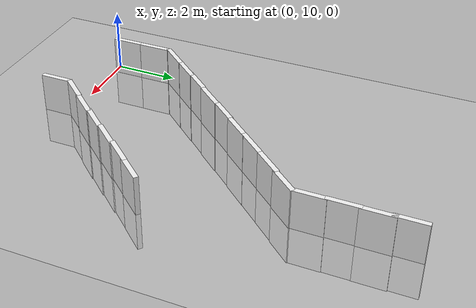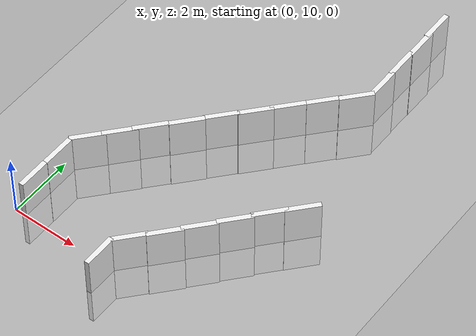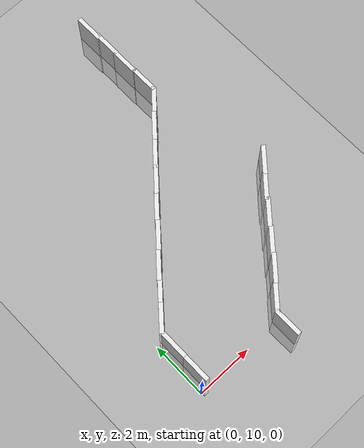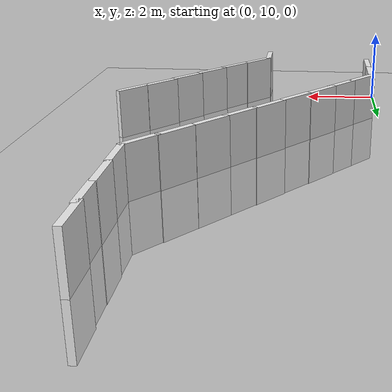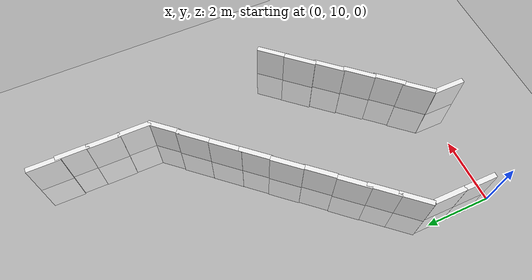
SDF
<sdf version="1.6">
 <world name="default">
  <model name="ground_plane">
   <static>1</static>
   <link name="link">
    <collision name="collision">
     <geometry><plane><normal>0 0 1</normal><size>100 100</size></plane></geometry>
     <surface><friction><ode><mu>100</mu><mu2>50</mu2></ode></friction></surface>
    </collision>
    <visual name="visual">
     <cast_shadows>0</cast_shadows>
     <geometry><plane><normal>0 0 1</normal><size>100 100</size></plane></geometry>
     <material>
      <script><uri>file://media/materials/scripts/gazebo.material</uri><name>Gazebo/Grey</name></script>
     </material>
    </visual>
   </link>
  </model>
  <model name="wall_left_07_clone_3_clone_1">
   <link name="Wall_10">
    <inertial>
     <mass>1</mass>
     <inertia><ixx>1</ixx><ixy>0</ixy><ixz>0</ixz><iyy>1</iyy><iyz>0</iyz><izz>1</izz></inertia>
    </inertial>
    <visual name="Wall_10_Visual_0">
     <geometry><box><size>1 0.15 2.5</size></box></geometry>
     <material>
      <script>
       <uri>model://wall/materials/scripts</uri>
       <uri>model://wall/materials/textures</uri>
       <name>wall_white</name>
      </script>
      <shader type="pixel"><normal_map>__default__</normal_map></shader>
      <ambient>1 1 1 1</ambient>
      <diffuse>1 1 1 1</diffuse>
      <specular>0 0 0 1</specular>
      <emissive>0 0 0 1</emissive>
     </material>
     <meta><layer>0</layer></meta>
    </visual>
    <collision name="Wall_10_Collision_0">
     <geometry><box><size>1 0.15 2.5</size></box></geometry>
     <surface>
      <friction>
       <ode><mu>1</mu><mu2>1</mu2><fdir1>0 0 0</fdir1><slip1>0</slip1><slip2>0</slip2></ode>
       <torsional>
        <coefficient>1</coefficient>
        <patch_radius>0</patch_radius>
        <surface_radius>0</surface_radius>
        <use_patch_radius>1</use_patch_radius>
        <ode><slip>0</slip></ode>
       </torsional>
      </friction>
      <bounce><restitution_coefficient>0</restitution_coefficient><threshold>1e+06</threshold></bounce>
      <contact>
       <collide_without_contact>0</collide_without_contact>
       <collide_without_contact_bitmask>1</collide_without_contact_bitmask>
       <collide_bitmask>1</collide_bitmask>
       <ode>
        <soft_cfm>0</soft_cfm>
        <soft_erp>0.2</soft_erp>
        <kp>1e+13</kp>
        <kd>1</kd>
        <max_vel>0.01</max_vel>
        <min_depth>0</min_depth>
       </ode>
       <bullet>
        <split_impulse>1</split_impulse>
        <split_impulse_penetration_threshold>-0.01</split_impulse_penetration_threshold>
        <soft_cfm>0</soft_cfm>
        <soft_erp>0.2</soft_erp>
        <kp>1e+13</kp>
        <kd>1</kd>
       </bullet>
      </contact>
     </surface>
    </collision>
   </link>
   <static>1</static>
   <pose>3.2753 9.59984 0 0 -0 1.57</pose>
  </model>
  <model name="wall_left_07_clone_3_clone_3_clone">
   <link name="Wall_10">
    <inertial>
     <mass>1</mass>
     <inertia><ixx>1</ixx><ixy>0</ixy><ixz>0</ixz><iyy>1</iyy><iyz>0</iyz><izz>1</izz></inertia>
    </inertial>
    <visual name="Wall_10_Visual_0">
     <geometry><box><size>1 0.15 2.5</size></box></geometry>
     <material>
      <script>
       <uri>model://wall/materials/scripts</uri>
       <uri>model://wall/materials/textures</uri>
       <name>wall_white</name>
      </script>
      <shader type="pixel"><normal_map>__default__</normal_map></shader>
      <ambient>1 1 1 1</ambient>
      <diffuse>1 1 1 1</diffuse>
      <specular>0 0 0 1</specular>
      <emissive>0 0 0 1</emissive>
     </material>
     <meta><layer>0</layer></meta>
    </visual>
    <collision name="Wall_10_Collision_0">
     <geometry><box><size>1 0.15 2.5</size></box></geometry>
     <surface>
      <friction>
       <ode><mu>1</mu><mu2>1</mu2><fdir1>0 0 0</fdir1><slip1>0</slip1><slip2>0</slip2></ode>
       <torsional>
        <coefficient>1</coefficient>
        <patch_radius>0</patch_radius>
        <surface_radius>0</surface_radius>
        <use_patch_radius>1</use_patch_radius>
        <ode><slip>0</slip></ode>
       </torsional>
      </friction>
      <bounce><restitution_coefficient>0</restitution_coefficient><threshold>1e+06</threshold></bounce>
      <contact>
       <collide_without_contact>0</collide_without_contact>
       <collide_without_contact_bitmask>1</collide_without_contact_bitmask>
       <collide_bitmask>1</collide_bitmask>
       <ode>
        <soft_cfm>0</soft_cfm>
        <soft_erp>0.2</soft_erp>
        <kp>1e+13</kp>
        <kd>1</kd>
        <max_vel>0.01</max_vel>
        <min_depth>0</min_depth>
       </ode>
       <bullet>
        <split_impulse>1</split_impulse>
        <split_impulse_penetration_threshold>-0.01</split_impulse_penetration_threshold>
        <soft_cfm>0</soft_cfm>
        <soft_erp>0.2</soft_erp>
        <kp>1e+13</kp>
        <kd>1</kd>
       </bullet>
      </contact>
     </surface>
    </collision>
   </link>
   <static>1</static>
   <pose>3.5922 10.4182 0 0 -0 0.850469</pose>
  </model>
  <model name="wall_left_07_clone_3_clone_3_clone_clone">
   <link name="Wall_10">
    <inertial>
     <mass>1</mass>
     <inertia><ixx>1</ixx><ixy>0</ixy><ixz>0</ixz><iyy>1</iyy><iyz>0</iyz><izz>1</izz></inertia>
    </inertial>
    <visual name="Wall_10_Visual_0">
     <geometry><box><size>1 0.15 2.5</size></box></geometry>
     <material>
      <script>
       <uri>model://wall/materials/scripts</uri>
       <uri>model://wall/materials/textures</uri>
       <name>wall_white</name>
      </script>
      <shader type="pixel"><normal_map>__default__</normal_map></shader>
      <ambient>1 1 1 1</ambient>
      <diffuse>1 1 1 1</diffuse>
      <specular>0 0 0 1</specular>
      <emissive>0 0 0 1</emissive>
     </material>
     <meta><layer>0</layer></meta>
    </visual>
    <collision name="Wall_10_Collision_0">
     <geometry><box><size>1 0.15 2.5</size></box></geometry>
     <surface>
      <friction>
       <ode><mu>1</mu><mu2>1</mu2><fdir1>0 0 0</fdir1><slip1>0</slip1><slip2>0</slip2></ode>
       <torsional>
        <coefficient>1</coefficient>
        <patch_radius>0</patch_radius>
        <surface_radius>0</surface_radius>
        <use_patch_radius>1</use_patch_radius>
        <ode><slip>0</slip></ode>
       </torsional>
      </friction>
      <bounce><restitution_coefficient>0</restitution_coefficient><threshold>1e+06</threshold></bounce>
      <contact>
       <collide_without_contact>0</collide_without_contact>
       <collide_without_contact_bitmask>1</collide_without_contact_bitmask>
       <collide_bitmask>1</collide_bitmask>
       <ode>
        <soft_cfm>0</soft_cfm>
        <soft_erp>0.2</soft_erp>
        <kp>1e+13</kp>
        <kd>1</kd>
        <max_vel>0.01</max_vel>
        <min_depth>0</min_depth>
       </ode>
       <bullet>
        <split_impulse>1</split_impulse>
        <split_impulse_penetration_threshold>-0.01</split_impulse_penetration_threshold>
        <soft_cfm>0</soft_cfm>
        <soft_erp>0.2</soft_erp>
        <kp>1e+13</kp>
        <kd>1</kd>
       </bullet>
      </contact>
     </surface>
    </collision>
   </link>
   <static>1</static>
   <pose>4.22125 11.1059 0 0 -0 0.850469</pose>
  </model>
  <model name="wall_left_07_clone_3_clone_3_clone_clone_0">
   <link name="Wall_10">
    <inertial>
     <mass>1</mass>
     <inertia><ixx>1</ixx><ixy>0</ixy><ixz>0</ixz><iyy>1</iyy><iyz>0</iyz><izz>1</izz></inertia>
    </inertial>
    <visual name="Wall_10_Visual_0">
     <geometry><box><size>1 0.15 2.5</size></box></geometry>
     <material>
      <script>
       <uri>model://wall/materials/scripts</uri>
       <uri>model://wall/materials/textures</uri>
       <name>wall_white</name>
      </script>
      <shader type="pixel"><normal_map>__default__</normal_map></shader>
      <ambient>1 1 1 1</ambient>
      <diffuse>1 1 1 1</diffuse>
      <specular>0 0 0 1</specular>
      <emissive>0 0 0 1</emissive>
     </material>
     <meta><layer>0</layer></meta>
    </visual>
    <collision name="Wall_10_Collision_0">
     <geometry><box><size>1 0.15 2.5</size></box></geometry>
     <surface>
      <friction>
       <ode><mu>1</mu><mu2>1</mu2><fdir1>0 0 0</fdir1><slip1>0</slip1><slip2>0</slip2></ode>
       <torsional>
        <coefficient>1</coefficient>
        <patch_radius>0</patch_radius>
        <surface_radius>0</surface_radius>
        <use_patch_radius>1</use_patch_radius>
        <ode><slip>0</slip></ode>
       </torsional>
      </friction>
      <bounce><restitution_coefficient>0</restitution_coefficient><threshold>1e+06</threshold></bounce>
      <contact>
       <collide_without_contact>0</collide_without_contact>
       <collide_without_contact_bitmask>1</collide_without_contact_bitmask>
       <collide_bitmask>1</collide_bitmask>
       <ode>
        <soft_cfm>0</soft_cfm>
        <soft_erp>0.2</soft_erp>
        <kp>1e+13</kp>
        <kd>1</kd>
        <max_vel>0.01</max_vel>
        <min_depth>0</min_depth>
       </ode>
       <bullet>
        <split_impulse>1</split_impulse>
        <split_impulse_penetration_threshold>-0.01</split_impulse_penetration_threshold>
        <soft_cfm>0</soft_cfm>
        <soft_erp>0.2</soft_erp>
        <kp>1e+13</kp>
        <kd>1</kd>
       </bullet>
      </contact>
     </surface>
    </collision>
   </link>
   <static>1</static>
   <pose>4.80636 11.812 0 0 -0 0.850469</pose>
  </model>
  <model name="wall_left_07_clone_3_clone_3_clone_clone_1">
   <link name="Wall_10">
    <inertial>
     <mass>1</mass>
     <inertia><ixx>1</ixx><ixy>0</ixy><ixz>0</ixz><iyy>1</iyy><iyz>0</iyz><izz>1</izz></inertia>
    </inertial>
    <visual name="Wall_10_Visual_0">
     <geometry><box><size>1 0.15 2.5</size></box></geometry>
     <material>
      <script>
       <uri>model://wall/materials/scripts</uri>
       <uri>model://wall/materials/textures</uri>
       <name>wall_white</name>
      </script>
      <shader type="pixel"><normal_map>__default__</normal_map></shader>
      <ambient>1 1 1 1</ambient>
      <diffuse>1 1 1 1</diffuse>
      <specular>0 0 0 1</specular>
      <emissive>0 0 0 1</emissive>
     </material>
     <meta><layer>0</layer></meta>
    </visual>
    <collision name="Wall_10_Collision_0">
     <geometry><box><size>1 0.15 2.5</size></box></geometry>
     <surface>
      <friction>
       <ode><mu>1</mu><mu2>1</mu2><fdir1>0 0 0</fdir1><slip1>0</slip1><slip2>0</slip2></ode>
       <torsional>
        <coefficient>1</coefficient>
        <patch_radius>0</patch_radius>
        <surface_radius>0</surface_radius>
        <use_patch_radius>1</use_patch_radius>
        <ode><slip>0</slip></ode>
       </torsional>
      </friction>
      <bounce><restitution_coefficient>0</restitution_coefficient><threshold>1e+06</threshold></bounce>
      <contact>
       <collide_without_contact>0</collide_without_contact>
       <collide_without_contact_bitmask>1</collide_without_contact_bitmask>
       <collide_bitmask>1</collide_bitmask>
       <ode>
        <soft_cfm>0</soft_cfm>
        <soft_erp>0.2</soft_erp>
        <kp>1e+13</kp>
        <kd>1</kd>
        <max_vel>0.01</max_vel>
        <min_depth>0</min_depth>
       </ode>
       <bullet>
        <split_impulse>1</split_impulse>
        <split_impulse_penetration_threshold>-0.01</split_impulse_penetration_threshold>
        <soft_cfm>0</soft_cfm>
        <soft_erp>0.2</soft_erp>
        <kp>1e+13</kp>
        <kd>1</kd>
       </bullet>
      </contact>
     </surface>
    </collision>
   </link>
   <static>1</static>
   <pose>5.40462 12.5407 0 0 -0 0.850469</pose>
  </model>
  <model name="wall_left_07_clone_3_clone_3_clone_clone_2">
   <link name="Wall_10">
    <inertial>
     <mass>1</mass>
     <inertia><ixx>1</ixx><ixy>0</ixy><ixz>0</ixz><iyy>1</iyy><iyz>0</iyz><izz>1</izz></inertia>
    </inertial>
    <visual name="Wall_10_Visual_0">
     <geometry><box><size>1 0.15 2.5</size></box></geometry>
     <material>
      <script>
       <uri>model://wall/materials/scripts</uri>
       <uri>model://wall/materials/textures</uri>
       <name>wall_white</name>
      </script>
      <shader type="pixel"><normal_map>__default__</normal_map></shader>
      <ambient>1 1 1 1</ambient>
      <diffuse>1 1 1 1</diffuse>
      <specular>0 0 0 1</specular>
      <emissive>0 0 0 1</emissive>
     </material>
     <meta><layer>0</layer></meta>
    </visual>
    <collision name="Wall_10_Collision_0">
     <geometry><box><size>1 0.15 2.5</size></box></geometry>
     <surface>
      <friction>
       <ode><mu>1</mu><mu2>1</mu2><fdir1>0 0 0</fdir1><slip1>0</slip1><slip2>0</slip2></ode>
       <torsional>
        <coefficient>1</coefficient>
        <patch_radius>0</patch_radius>
        <surface_radius>0</surface_radius>
        <use_patch_radius>1</use_patch_radius>
        <ode><slip>0</slip></ode>
       </torsional>
      </friction>
      <bounce><restitution_coefficient>0</restitution_coefficient><threshold>1e+06</threshold></bounce>
      <contact>
       <collide_without_contact>0</collide_without_contact>
       <collide_without_contact_bitmask>1</collide_without_contact_bitmask>
       <collide_bitmask>1</collide_bitmask>
       <ode>
        <soft_cfm>0</soft_cfm>
        <soft_erp>0.2</soft_erp>
        <kp>1e+13</kp>
        <kd>1</kd>
        <max_vel>0.01</max_vel>
        <min_depth>0</min_depth>
       </ode>
       <bullet>
        <split_impulse>1</split_impulse>
        <split_impulse_penetration_threshold>-0.01</split_impulse_penetration_threshold>
        <soft_cfm>0</soft_cfm>
        <soft_erp>0.2</soft_erp>
        <kp>1e+13</kp>
        <kd>1</kd>
       </bullet>
      </contact>
     </surface>
    </collision>
   </link>
   <static>1</static>
   <pose>5.9854 13.2576 0 0 -0 0.850469</pose>
  </model>
  <model name="wall_left_07_clone_3_clone_3_clone_clone_3">
   <link name="Wall_10">
    <inertial>
     <mass>1</mass>
     <inertia><ixx>1</ixx><ixy>0</ixy><ixz>0</ixz><iyy>1</iyy><iyz>0</iyz><izz>1</izz></inertia>
    </inertial>
    <visual name="Wall_10_Visual_0">
     <geometry><box><size>1 0.15 2.5</size></box></geometry>
     <material>
      <script>
       <uri>model://wall/materials/scripts</uri>
       <uri>model://wall/materials/textures</uri>
       <name>wall_white</name>
      </script>
      <shader type="pixel"><normal_map>__default__</normal_map></shader>
      <ambient>1 1 1 1</ambient>
      <diffuse>1 1 1 1</diffuse>
      <specular>0 0 0 1</specular>
      <emissive>0 0 0 1</emissive>
     </material>
     <meta><layer>0</layer></meta>
    </visual>
    <collision name="Wall_10_Collision_0">
     <geometry><box><size>1 0.15 2.5</size></box></geometry>
     <surface>
      <friction>
       <ode><mu>1</mu><mu2>1</mu2><fdir1>0 0 0</fdir1><slip1>0</slip1><slip2>0</slip2></ode>
       <torsional>
        <coefficient>1</coefficient>
        <patch_radius>0</patch_radius>
        <surface_radius>0</surface_radius>
        <use_patch_radius>1</use_patch_radius>
        <ode><slip>0</slip></ode>
       </torsional>
      </friction>
      <bounce><restitution_coefficient>0</restitution_coefficient><threshold>1e+06</threshold></bounce>
      <contact>
       <collide_without_contact>0</collide_without_contact>
       <collide_without_contact_bitmask>1</collide_without_contact_bitmask>
       <collide_bitmask>1</collide_bitmask>
       <ode>
        <soft_cfm>0</soft_cfm>
        <soft_erp>0.2</soft_erp>
        <kp>1e+13</kp>
        <kd>1</kd>
        <max_vel>0.01</max_vel>
        <min_depth>0</min_depth>
       </ode>
       <bullet>
        <split_impulse>1</split_impulse>
        <split_impulse_penetration_threshold>-0.01</split_impulse_penetration_threshold>
        <soft_cfm>0</soft_cfm>
        <soft_erp>0.2</soft_erp>
        <kp>1e+13</kp>
        <kd>1</kd>
       </bullet>
      </contact>
     </surface>
    </collision>
   </link>
   <static>1</static>
   <pose>6.56975 13.9124 0 0 -0 0.850469</pose>
  </model>
  <model name="wall_left_07_clone_3_clone_2_clone">
   <link name="Wall_10">
    <inertial>
     <mass>1</mass>
     <inertia><ixx>1</ixx><ixy>0</ixy><ixz>0</ixz><iyy>1</iyy><iyz>0</iyz><izz>1</izz></inertia>
    </inertial>
    <visual name="Wall_10_Visual_0">
     <geometry><box><size>1 0.15 2.5</size></box></geometry>
     <material>
      <script>
       <uri>model://wall/materials/scripts</uri>
       <uri>model://wall/materials/textures</uri>
       <name>wall_white</name>
      </script>
      <shader type="pixel"><normal_map>__default__</normal_map></shader>
      <ambient>1 1 1 1</ambient>
      <diffuse>1 1 1 1</diffuse>
      <specular>0 0 0 1</specular>
      <emissive>0 0 0 1</emissive>
     </material>
     <meta><layer>0</layer></meta>
    </visual>
    <collision name="Wall_10_Collision_0">
     <geometry><box><size>1 0.15 2.5</size></box></geometry>
     <surface>
      <friction>
       <ode><mu>1</mu><mu2>1</mu2><fdir1>0 0 0</fdir1><slip1>0</slip1><slip2>0</slip2></ode>
       <torsional>
        <coefficient>1</coefficient>
        <patch_radius>0</patch_radius>
        <surface_radius>0</surface_radius>
        <use_patch_radius>1</use_patch_radius>
        <ode><slip>0</slip></ode>
       </torsional>
      </friction>
      <bounce><restitution_coefficient>0</restitution_coefficient><threshold>1e+06</threshold></bounce>
      <contact>
       <collide_without_contact>0</collide_without_contact>
       <collide_without_contact_bitmask>1</collide_without_contact_bitmask>
       <collide_bitmask>1</collide_bitmask>
       <ode>
        <soft_cfm>0</soft_cfm>
        <soft_erp>0.2</soft_erp>
        <kp>1e+13</kp>
        <kd>1</kd>
        <max_vel>0.01</max_vel>
        <min_depth>0</min_depth>
       </ode>
       <bullet>
        <split_impulse>1</split_impulse>
        <split_impulse_penetration_threshold>-0.01</split_impulse_penetration_threshold>
        <soft_cfm>0</soft_cfm>
        <soft_erp>0.2</soft_erp>
        <kp>1e+13</kp>
        <kd>1</kd>
       </bullet>
      </contact>
     </surface>
    </collision>
   </link>
   <static>1</static>
   <pose>0.260571 10.5228 0 0 -0 1.57</pose>
  </model>
  <model name="wall_left_07_clone_3_clone_2_clone_clone">
   <link name="Wall_10">
    <inertial>
     <mass>1</mass>
     <inertia><ixx>1</ixx><ixy>0</ixy><ixz>0</ixz><iyy>1</iyy><iyz>0</iyz><izz>1</izz></inertia>
    </inertial>
    <visual name="Wall_10_Visual_0">
     <geometry><box><size>1 0.15 2.5</size></box></geometry>
     <material>
      <script>
       <uri>model://wall/materials/scripts</uri>
       <uri>model://wall/materials/textures</uri>
       <name>wall_white</name>
      </script>
      <shader type="pixel"><normal_map>__default__</normal_map></shader>
      <ambient>1 1 1 1</ambient>
      <diffuse>1 1 1 1</diffuse>
      <specular>0 0 0 1</specular>
      <emissive>0 0 0 1</emissive>
     </material>
     <meta><layer>0</layer></meta>
    </visual>
    <collision name="Wall_10_Collision_0">
     <geometry><box><size>1 0.15 2.5</size></box></geometry>
     <surface>
      <friction>
       <ode><mu>1</mu><mu2>1</mu2><fdir1>0 0 0</fdir1><slip1>0</slip1><slip2>0</slip2></ode>
       <torsional>
        <coefficient>1</coefficient>
        <patch_radius>0</patch_radius>
        <surface_radius>0</surface_radius>
        <use_patch_radius>1</use_patch_radius>
        <ode><slip>0</slip></ode>
       </torsional>
      </friction>
      <bounce><restitution_coefficient>0</restitution_coefficient><threshold>1e+06</threshold></bounce>
      <contact>
       <collide_without_contact>0</collide_without_contact>
       <collide_without_contact_bitmask>1</collide_without_contact_bitmask>
       <collide_bitmask>1</collide_bitmask>
       <ode>
        <soft_cfm>0</soft_cfm>
        <soft_erp>0.2</soft_erp>
        <kp>1e+13</kp>
        <kd>1</kd>
        <max_vel>0.01</max_vel>
        <min_depth>0</min_depth>
       </ode>
       <bullet>
        <split_impulse>1</split_impulse>
        <split_impulse_penetration_threshold>-0.01</split_impulse_penetration_threshold>
        <soft_cfm>0</soft_cfm>
        <soft_erp>0.2</soft_erp>
        <kp>1e+13</kp>
        <kd>1</kd>
       </bullet>
      </contact>
     </surface>
    </collision>
   </link>
   <static>1</static>
   <pose>0.264516 11.4938 0 0 -0 1.57</pose>
  </model>
  <model name="wall_left_07_clone_3_clone_3_clone_clone_4">
   <link name="Wall_10">
    <inertial>
     <mass>1</mass>
     <inertia><ixx>1</ixx><ixy>0</ixy><ixz>0</ixz><iyy>1</iyy><iyz>0</iyz><izz>1</izz></inertia>
    </inertial>
    <visual name="Wall_10_Visual_0">
     <geometry><box><size>1 0.15 2.5</size></box></geometry>
     <material>
      <script>
       <uri>model://wall/materials/scripts</uri>
       <uri>model://wall/materials/textures</uri>
       <name>wall_white</name>
      </script>
      <shader type="pixel"><normal_map>__default__</normal_map></shader>
      <ambient>1 1 1 1</ambient>
      <diffuse>1 1 1 1</diffuse>
      <specular>0 0 0 1</specular>
      <emissive>0 0 0 1</emissive>
     </material>
     <meta><layer>0</layer></meta>
    </visual>
    <collision name="Wall_10_Collision_0">
     <geometry><box><size>1 0.15 2.5</size></box></geometry>
     <surface>
      <friction>
       <ode><mu>1</mu><mu2>1</mu2><fdir1>0 0 0</fdir1><slip1>0</slip1><slip2>0</slip2></ode>
       <torsional>
        <coefficient>1</coefficient>
        <patch_radius>0</patch_radius>
        <surface_radius>0</surface_radius>
        <use_patch_radius>1</use_patch_radius>
        <ode><slip>0</slip></ode>
       </torsional>
      </friction>
      <bounce><restitution_coefficient>0</restitution_coefficient><threshold>1e+06</threshold></bounce>
      <contact>
       <collide_without_contact>0</collide_without_contact>
       <collide_without_contact_bitmask>1</collide_without_contact_bitmask>
       <collide_bitmask>1</collide_bitmask>
       <ode>
        <soft_cfm>0</soft_cfm>
        <soft_erp>0.2</soft_erp>
        <kp>1e+13</kp>
        <kd>1</kd>
        <max_vel>0.01</max_vel>
        <min_depth>0</min_depth>
       </ode>
       <bullet>
        <split_impulse>1</split_impulse>
        <split_impulse_penetration_threshold>-0.01</split_impulse_penetration_threshold>
        <soft_cfm>0</soft_cfm>
        <soft_erp>0.2</soft_erp>
        <kp>1e+13</kp>
        <kd>1</kd>
       </bullet>
      </contact>
     </surface>
    </collision>
   </link>
   <static>1</static>
   <pose>0.553027 12.3794 0 0 -0 0.850469</pose>
  </model>
  <model name="wall_left_07_clone_3_clone_3_clone_clone_5">
   <link name="Wall_10">
    <inertial>
     <mass>1</mass>
     <inertia><ixx>1</ixx><ixy>0</ixy><ixz>0</ixz><iyy>1</iyy><iyz>0</iyz><izz>1</izz></inertia>
    </inertial>
    <visual name="Wall_10_Visual_0">
     <geometry><box><size>1 0.15 2.5</size></box></geometry>
     <material>
      <script>
       <uri>model://wall/materials/scripts</uri>
       <uri>model://wall/materials/textures</uri>
       <name>wall_white</name>
      </script>
      <shader type="pixel"><normal_map>__default__</normal_map></shader>
      <ambient>1 1 1 1</ambient>
      <diffuse>1 1 1 1</diffuse>
      <specular>0 0 0 1</specular>
      <emissive>0 0 0 1</emissive>
     </material>
     <meta><layer>0</layer></meta>
    </visual>
    <collision name="Wall_10_Collision_0">
     <geometry><box><size>1 0.15 2.5</size></box></geometry>
     <surface>
      <friction>
       <ode><mu>1</mu><mu2>1</mu2><fdir1>0 0 0</fdir1><slip1>0</slip1><slip2>0</slip2></ode>
       <torsional>
        <coefficient>1</coefficient>
        <patch_radius>0</patch_radius>
        <surface_radius>0</surface_radius>
        <use_patch_radius>1</use_patch_radius>
        <ode><slip>0</slip></ode>
       </torsional>
      </friction>
      <bounce><restitution_coefficient>0</restitution_coefficient><threshold>1e+06</threshold></bounce>
      <contact>
       <collide_without_contact>0</collide_without_contact>
       <collide_without_contact_bitmask>1</collide_without_contact_bitmask>
       <collide_bitmask>1</collide_bitmask>
       <ode>
        <soft_cfm>0</soft_cfm>
        <soft_erp>0.2</soft_erp>
        <kp>1e+13</kp>
        <kd>1</kd>
        <max_vel>0.01</max_vel>
        <min_depth>0</min_depth>
       </ode>
       <bullet>
        <split_impulse>1</split_impulse>
        <split_impulse_penetration_threshold>-0.01</split_impulse_penetration_threshold>
        <soft_cfm>0</soft_cfm>
        <soft_erp>0.2</soft_erp>
        <kp>1e+13</kp>
        <kd>1</kd>
       </bullet>
      </contact>
     </surface>
    </collision>
   </link>
   <static>1</static>
   <pose>1.13148 13.0444 0 0 -0 0.850469</pose>
  </model>
  <model name="wall_left_07_clone_3_clone_3_clone_clone_6">
   <link name="Wall_10">
    <inertial>
     <mass>1</mass>
     <inertia><ixx>1</ixx><ixy>0</ixy><ixz>0</ixz><iyy>1</iyy><iyz>0</iyz><izz>1</izz></inertia>
    </inertial>
    <visual name="Wall_10_Visual_0">
     <geometry><box><size>1 0.15 2.5</size></box></geometry>
     <material>
      <script>
       <uri>model://wall/materials/scripts</uri>
       <uri>model://wall/materials/textures</uri>
       <name>wall_white</name>
      </script>
      <shader type="pixel"><normal_map>__default__</normal_map></shader>
      <ambient>1 1 1 1</ambient>
      <diffuse>1 1 1 1</diffuse>
      <specular>0 0 0 1</specular>
      <emissive>0 0 0 1</emissive>
     </material>
     <meta><layer>0</layer></meta>
    </visual>
    <collision name="Wall_10_Collision_0">
     <geometry><box><size>1 0.15 2.5</size></box></geometry>
     <surface>
      <friction>
       <ode><mu>1</mu><mu2>1</mu2><fdir1>0 0 0</fdir1><slip1>0</slip1><slip2>0</slip2></ode>
       <torsional>
        <coefficient>1</coefficient>
        <patch_radius>0</patch_radius>
        <surface_radius>0</surface_radius>
        <use_patch_radius>1</use_patch_radius>
        <ode><slip>0</slip></ode>
       </torsional>
      </friction>
      <bounce><restitution_coefficient>0</restitution_coefficient><threshold>1e+06</threshold></bounce>
      <contact>
       <collide_without_contact>0</collide_without_contact>
       <collide_without_contact_bitmask>1</collide_without_contact_bitmask>
       <collide_bitmask>1</collide_bitmask>
       <ode>
        <soft_cfm>0</soft_cfm>
        <soft_erp>0.2</soft_erp>
        <kp>1e+13</kp>
        <kd>1</kd>
        <max_vel>0.01</max_vel>
        <min_depth>0</min_depth>
       </ode>
       <bullet>
        <split_impulse>1</split_impulse>
        <split_impulse_penetration_threshold>-0.01</split_impulse_penetration_threshold>
        <soft_cfm>0</soft_cfm>
        <soft_erp>0.2</soft_erp>
        <kp>1e+13</kp>
        <kd>1</kd>
       </bullet>
      </contact>
     </surface>
    </collision>
   </link>
   <static>1</static>
   <pose>1.66481 13.674 0 0 -0 0.850469</pose>
  </model>
  <model name="wall_left_07_clone_3_clone_3_clone_clone_7">
   <link name="Wall_10">
    <inertial>
     <mass>1</mass>
     <inertia><ixx>1</ixx><ixy>0</ixy><ixz>0</ixz><iyy>1</iyy><iyz>0</iyz><izz>1</izz></inertia>
    </inertial>
    <visual name="Wall_10_Visual_0">
     <geometry><box><size>1 0.15 2.5</size></box></geometry>
     <material>
      <script>
       <uri>model://wall/materials/scripts</uri>
       <uri>model://wall/materials/textures</uri>
       <name>wall_white</name>
      </script>
      <shader type="pixel"><normal_map>__default__</normal_map></shader>
      <ambient>1 1 1 1</ambient>
      <diffuse>1 1 1 1</diffuse>
      <specular>0 0 0 1</specular>
      <emissive>0 0 0 1</emissive>
     </material>
     <meta><layer>0</layer></meta>
    </visual>
    <collision name="Wall_10_Collision_0">
     <geometry><box><size>1 0.15 2.5</size></box></geometry>
     <surface>
      <friction>
       <ode><mu>1</mu><mu2>1</mu2><fdir1>0 0 0</fdir1><slip1>0</slip1><slip2>0</slip2></ode>
       <torsional>
        <coefficient>1</coefficient>
        <patch_radius>0</patch_radius>
        <surface_radius>0</surface_radius>
        <use_patch_radius>1</use_patch_radius>
        <ode><slip>0</slip></ode>
       </torsional>
      </friction>
      <bounce><restitution_coefficient>0</restitution_coefficient><threshold>1e+06</threshold></bounce>
      <contact>
       <collide_without_contact>0</collide_without_contact>
       <collide_without_contact_bitmask>1</collide_without_contact_bitmask>
       <collide_bitmask>1</collide_bitmask>
       <ode>
        <soft_cfm>0</soft_cfm>
        <soft_erp>0.2</soft_erp>
        <kp>1e+13</kp>
        <kd>1</kd>
        <max_vel>0.01</max_vel>
        <min_depth>0</min_depth>
       </ode>
       <bullet>
        <split_impulse>1</split_impulse>
        <split_impulse_penetration_threshold>-0.01</split_impulse_penetration_threshold>
        <soft_cfm>0</soft_cfm>
        <soft_erp>0.2</soft_erp>
        <kp>1e+13</kp>
        <kd>1</kd>
       </bullet>
      </contact>
     </surface>
    </collision>
   </link>
   <static>1</static>
   <pose>2.33176 14.4071 0 0 -0 0.850469</pose>
  </model>
  <model name="wall_left_07_clone_3_clone_3_clone_clone_8">
   <link name="Wall_10">
    <inertial>
     <mass>1</mass>
     <inertia><ixx>1</ixx><ixy>0</ixy><ixz>0</ixz><iyy>1</iyy><iyz>0</iyz><izz>1</izz></inertia>
    </inertial>
    <visual name="Wall_10_Visual_0">
     <geometry><box><size>1 0.15 2.5</size></box></geometry>
     <material>
      <script>
       <uri>model://wall/materials/scripts</uri>
       <uri>model://wall/materials/textures</uri>
       <name>wall_white</name>
      </script>
      <shader type="pixel"><normal_map>__default__</normal_map></shader>
      <ambient>1 1 1 1</ambient>
      <diffuse>1 1 1 1</diffuse>
      <specular>0 0 0 1</specular>
      <emissive>0 0 0 1</emissive>
     </material>
     <meta><layer>0</layer></meta>
    </visual>
    <collision name="Wall_10_Collision_0">
     <geometry><box><size>1 0.15 2.5</size></box></geometry>
     <surface>
      <friction>
       <ode><mu>1</mu><mu2>1</mu2><fdir1>0 0 0</fdir1><slip1>0</slip1><slip2>0</slip2></ode>
       <torsional>
        <coefficient>1</coefficient>
        <patch_radius>0</patch_radius>
        <surface_radius>0</surface_radius>
        <use_patch_radius>1</use_patch_radius>
        <ode><slip>0</slip></ode>
       </torsional>
      </friction>
      <bounce><restitution_coefficient>0</restitution_coefficient><threshold>1e+06</threshold></bounce>
      <contact>
       <collide_without_contact>0</collide_without_contact>
       <collide_without_contact_bitmask>1</collide_without_contact_bitmask>
       <collide_bitmask>1</collide_bitmask>
       <ode>
        <soft_cfm>0</soft_cfm>
        <soft_erp>0.2</soft_erp>
        <kp>1e+13</kp>
        <kd>1</kd>
        <max_vel>0.01</max_vel>
        <min_depth>0</min_depth>
       </ode>
       <bullet>
        <split_impulse>1</split_impulse>
        <split_impulse_penetration_threshold>-0.01</split_impulse_penetration_threshold>
        <soft_cfm>0</soft_cfm>
        <soft_erp>0.2</soft_erp>
        <kp>1e+13</kp>
        <kd>1</kd>
       </bullet>
      </contact>
     </surface>
    </collision>
   </link>
   <static>1</static>
   <pose>2.94194 15.1273 0 0 -0 0.850469</pose>
  </model>
  <model name="wall_left_07_clone_3_clone_3_clone_clone_9">
   <link name="Wall_10">
    <inertial>
     <mass>1</mass>
     <inertia><ixx>1</ixx><ixy>0</ixy><ixz>0</ixz><iyy>1</iyy><iyz>0</iyz><izz>1</izz></inertia>
    </inertial>
    <visual name="Wall_10_Visual_0">
     <geometry><box><size>1 0.15 2.5</size></box></geometry>
     <material>
      <script>
       <uri>model://wall/materials/scripts</uri>
       <uri>model://wall/materials/textures</uri>
       <name>wall_white</name>
      </script>
      <shader type="pixel"><normal_map>__default__</normal_map></shader>
      <ambient>1 1 1 1</ambient>
      <diffuse>1 1 1 1</diffuse>
      <specular>0 0 0 1</specular>
      <emissive>0 0 0 1</emissive>
     </material>
     <meta><layer>0</layer></meta>
    </visual>
    <collision name="Wall_10_Collision_0">
     <geometry><box><size>1 0.15 2.5</size></box></geometry>
     <surface>
      <friction>
       <ode><mu>1</mu><mu2>1</mu2><fdir1>0 0 0</fdir1><slip1>0</slip1><slip2>0</slip2></ode>
       <torsional>
        <coefficient>1</coefficient>
        <patch_radius>0</patch_radius>
        <surface_radius>0</surface_radius>
        <use_patch_radius>1</use_patch_radius>
        <ode><slip>0</slip></ode>
       </torsional>
      </friction>
      <bounce><restitution_coefficient>0</restitution_coefficient><threshold>1e+06</threshold></bounce>
      <contact>
       <collide_without_contact>0</collide_without_contact>
       <collide_without_contact_bitmask>1</collide_without_contact_bitmask>
       <collide_bitmask>1</collide_bitmask>
       <ode>
        <soft_cfm>0</soft_cfm>
        <soft_erp>0.2</soft_erp>
        <kp>1e+13</kp>
        <kd>1</kd>
        <max_vel>0.01</max_vel>
        <min_depth>0</min_depth>
       </ode>
       <bullet>
        <split_impulse>1</split_impulse>
        <split_impulse_penetration_threshold>-0.01</split_impulse_penetration_threshold>
        <soft_cfm>0</soft_cfm>
        <soft_erp>0.2</soft_erp>
        <kp>1e+13</kp>
        <kd>1</kd>
       </bullet>
      </contact>
     </surface>
    </collision>
   </link>
   <static>1</static>
   <pose>3.57457 15.825 0 0 -0 0.850469</pose>
  </model>
  <model name="wall_left_07_clone_3_clone_3_clone_clone_10">
   <link name="Wall_10">
    <inertial>
     <mass>1</mass>
     <inertia><ixx>1</ixx><ixy>0</ixy><ixz>0</ixz><iyy>1</iyy><iyz>0</iyz><izz>1</izz></inertia>
    </inertial>
    <visual name="Wall_10_Visual_0">
     <geometry><box><size>1 0.15 2.5</size></box></geometry>
     <material>
      <script>
       <uri>model://wall/materials/scripts</uri>
       <uri>model://wall/materials/textures</uri>
       <name>wall_white</name>
      </script>
      <shader type="pixel"><normal_map>__default__</normal_map></shader>
      <ambient>1 1 1 1</ambient>
      <diffuse>1 1 1 1</diffuse>
      <specular>0 0 0 1</specular>
      <emissive>0 0 0 1</emissive>
     </material>
     <meta><layer>0</layer></meta>
    </visual>
    <collision name="Wall_10_Collision_0">
     <geometry><box><size>1 0.15 2.5</size></box></geometry>
     <surface>
      <friction>
       <ode><mu>1</mu><mu2>1</mu2><fdir1>0 0 0</fdir1><slip1>0</slip1><slip2>0</slip2></ode>
       <torsional>
        <coefficient>1</coefficient>
        <patch_radius>0</patch_radius>
        <surface_radius>0</surface_radius>
        <use_patch_radius>1</use_patch_radius>
        <ode><slip>0</slip></ode>
       </torsional>
      </friction>
      <bounce><restitution_coefficient>0</restitution_coefficient><threshold>1e+06</threshold></bounce>
      <contact>
       <collide_without_contact>0</collide_without_contact>
       <collide_without_contact_bitmask>1</collide_without_contact_bitmask>
       <collide_bitmask>1</collide_bitmask>
       <ode>
        <soft_cfm>0</soft_cfm>
        <soft_erp>0.2</soft_erp>
        <kp>1e+13</kp>
        <kd>1</kd>
        <max_vel>0.01</max_vel>
        <min_depth>0</min_depth>
       </ode>
       <bullet>
        <split_impulse>1</split_impulse>
        <split_impulse_penetration_threshold>-0.01</split_impulse_penetration_threshold>
        <soft_cfm>0</soft_cfm>
        <soft_erp>0.2</soft_erp>
        <kp>1e+13</kp>
        <kd>1</kd>
       </bullet>
      </contact>
     </surface>
    </collision>
   </link>
   <static>1</static>
   <pose>4.16198 16.4988 0 0 -0 0.850469</pose>
  </model>
  <model name="wall_left_07_clone_3_clone_3_clone_clone_11">
   <link name="Wall_10">
    <inertial>
     <mass>1</mass>
     <inertia><ixx>1</ixx><ixy>0</ixy><ixz>0</ixz><iyy>1</iyy><iyz>0</iyz><izz>1</izz></inertia>
    </inertial>
    <visual name="Wall_10_Visual_0">
     <geometry><box><size>1 0.15 2.5</size></box></geometry>
     <material>
      <script>
       <uri>model://wall/materials/scripts</uri>
       <uri>model://wall/materials/textures</uri>
       <name>wall_white</name>
      </script>
      <shader type="pixel"><normal_map>__default__</normal_map></shader>
      <ambient>1 1 1 1</ambient>
      <diffuse>1 1 1 1</diffuse>
      <specular>0 0 0 1</specular>
      <emissive>0 0 0 1</emissive>
     </material>
     <meta><layer>0</layer></meta>
    </visual>
    <collision name="Wall_10_Collision_0">
     <geometry><box><size>1 0.15 2.5</size></box></geometry>
     <surface>
      <friction>
       <ode><mu>1</mu><mu2>1</mu2><fdir1>0 0 0</fdir1><slip1>0</slip1><slip2>0</slip2></ode>
       <torsional>
        <coefficient>1</coefficient>
        <patch_radius>0</patch_radius>
        <surface_radius>0</surface_radius>
        <use_patch_radius>1</use_patch_radius>
        <ode><slip>0</slip></ode>
       </torsional>
      </friction>
      <bounce><restitution_coefficient>0</restitution_coefficient><threshold>1e+06</threshold></bounce>
      <contact>
       <collide_without_contact>0</collide_without_contact>
       <collide_without_contact_bitmask>1</collide_without_contact_bitmask>
       <collide_bitmask>1</collide_bitmask>
       <ode>
        <soft_cfm>0</soft_cfm>
        <soft_erp>0.2</soft_erp>
        <kp>1e+13</kp>
        <kd>1</kd>
        <max_vel>0.01</max_vel>
        <min_depth>0</min_depth>
       </ode>
       <bullet>
        <split_impulse>1</split_impulse>
        <split_impulse_penetration_threshold>-0.01</split_impulse_penetration_threshold>
        <soft_cfm>0</soft_cfm>
        <soft_erp>0.2</soft_erp>
        <kp>1e+13</kp>
        <kd>1</kd>
       </bullet>
      </contact>
     </surface>
    </collision>
   </link>
   <static>1</static>
   <pose>4.82175 17.2415 0 0 -0 0.850469</pose>
  </model>
  <model name="wall_left_07_clone_3_clone_3_clone_clone_12">
   <link name="Wall_10">
    <inertial>
     <mass>1</mass>
     <inertia><ixx>1</ixx><ixy>0</ixy><ixz>0</ixz><iyy>1</iyy><iyz>0</iyz><izz>1</izz></inertia>
    </inertial>
    <visual name="Wall_10_Visual_0">
     <geometry><box><size>1 0.15 2.5</size></box></geometry>
     <material>
      <script>
       <uri>model://wall/materials/scripts</uri>
       <uri>model://wall/materials/textures</uri>
       <name>wall_white</name>
      </script>
      <shader type="pixel"><normal_map>__default__</normal_map></shader>
      <ambient>1 1 1 1</ambient>
      <diffuse>1 1 1 1</diffuse>
      <specular>0 0 0 1</specular>
      <emissive>0 0 0 1</emissive>
     </material>
     <meta><layer>0</layer></meta>
    </visual>
    <collision name="Wall_10_Collision_0">
     <geometry><box><size>1 0.15 2.5</size></box></geometry>
     <surface>
      <friction>
       <ode><mu>1</mu><mu2>1</mu2><fdir1>0 0 0</fdir1><slip1>0</slip1><slip2>0</slip2></ode>
       <torsional>
        <coefficient>1</coefficient>
        <patch_radius>0</patch_radius>
        <surface_radius>0</surface_radius>
        <use_patch_radius>1</use_patch_radius>
        <ode><slip>0</slip></ode>
       </torsional>
      </friction>
      <bounce><restitution_coefficient>0</restitution_coefficient><threshold>1e+06</threshold></bounce>
      <contact>
       <collide_without_contact>0</collide_without_contact>
       <collide_without_contact_bitmask>1</collide_without_contact_bitmask>
       <collide_bitmask>1</collide_bitmask>
       <ode>
        <soft_cfm>0</soft_cfm>
        <soft_erp>0.2</soft_erp>
        <kp>1e+13</kp>
        <kd>1</kd>
        <max_vel>0.01</max_vel>
        <min_depth>0</min_depth>
       </ode>
       <bullet>
        <split_impulse>1</split_impulse>
        <split_impulse_penetration_threshold>-0.01</split_impulse_penetration_threshold>
        <soft_cfm>0</soft_cfm>
        <soft_erp>0.2</soft_erp>
        <kp>1e+13</kp>
        <kd>1</kd>
       </bullet>
      </contact>
     </surface>
    </collision>
   </link>
   <static>1</static>
   <pose>5.43138 17.905 0 0 -0 0.850469</pose>
  </model>
  <model name="wall_left_07_clone_3_clone_1_clone_clone_clone">
   <link name="Wall_10">
    <inertial>
     <mass>1</mass>
     <inertia><ixx>1</ixx><ixy>0</ixy><ixz>0</ixz><iyy>1</iyy><iyz>0</iyz><izz>1</izz></inertia>
    </inertial>
    <visual name="Wall_10_Visual_0">
     <geometry><box><size>1 0.15 2.5</size></box></geometry>
     <material>
      <script>
       <uri>model://wall/materials/scripts</uri>
       <uri>model://wall/materials/textures</uri>
       <name>wall_white</name>
      </script>
      <shader type="pixel"><normal_map>__default__</normal_map></shader>
      <ambient>1 1 1 1</ambient>
      <diffuse>1 1 1 1</diffuse>
      <specular>0 0 0 1</specular>
      <emissive>0 0 0 1</emissive>
     </material>
     <meta><layer>0</layer></meta>
    </visual>
    <collision name="Wall_10_Collision_0">
     <geometry><box><size>1 0.15 2.5</size></box></geometry>
     <surface>
      <friction>
       <ode><mu>1</mu><mu2>1</mu2><fdir1>0 0 0</fdir1><slip1>0</slip1><slip2>0</slip2></ode>
       <torsional>
        <coefficient>1</coefficient>
        <patch_radius>0</patch_radius>
        <surface_radius>0</surface_radius>
        <use_patch_radius>1</use_patch_radius>
        <ode><slip>0</slip></ode>
       </torsional>
      </friction>
      <bounce><restitution_coefficient>0</restitution_coefficient><threshold>1e+06</threshold></bounce>
      <contact>
       <collide_without_contact>0</collide_without_contact>
       <collide_without_contact_bitmask>1</collide_without_contact_bitmask>
       <collide_bitmask>1</collide_bitmask>
       <ode>
        <soft_cfm>0</soft_cfm>
        <soft_erp>0.2</soft_erp>
        <kp>1e+13</kp>
        <kd>1</kd>
        <max_vel>0.01</max_vel>
        <min_depth>0</min_depth>
       </ode>
       <bullet>
        <split_impulse>1</split_impulse>
        <split_impulse_penetration_threshold>-0.01</split_impulse_penetration_threshold>
        <soft_cfm>0</soft_cfm>
        <soft_erp>0.2</soft_erp>
        <kp>1e+13</kp>
        <kd>1</kd>
       </bullet>
      </contact>
     </surface>
    </collision>
   </link>
   <static>1</static>
   <pose>5.7206 18.7092 0 0 -0 1.57</pose>
  </model>
  <model name="wall_left_07_clone_3_clone_1_clone_clone_clone_0">
   <link name="Wall_10">
    <inertial>
     <mass>1</mass>
     <inertia><ixx>1</ixx><ixy>0</ixy><ixz>0</ixz><iyy>1</iyy><iyz>0</iyz><izz>1</izz></inertia>
    </inertial>
    <visual name="Wall_10_Visual_0">
     <geometry><box><size>1 0.15 2.5</size></box></geometry>
     <material>
      <script>
       <uri>model://wall/materials/scripts</uri>
       <uri>model://wall/materials/textures</uri>
       <name>wall_white</name>
      </script>
      <shader type="pixel"><normal_map>__default__</normal_map></shader>
      <ambient>1 1 1 1</ambient>
      <diffuse>1 1 1 1</diffuse>
      <specular>0 0 0 1</specular>
      <emissive>0 0 0 1</emissive>
     </material>
     <meta><layer>0</layer></meta>
    </visual>
    <collision name="Wall_10_Collision_0">
     <geometry><box><size>1 0.15 2.5</size></box></geometry>
     <surface>
      <friction>
       <ode><mu>1</mu><mu2>1</mu2><fdir1>0 0 0</fdir1><slip1>0</slip1><slip2>0</slip2></ode>
       <torsional>
        <coefficient>1</coefficient>
        <patch_radius>0</patch_radius>
        <surface_radius>0</surface_radius>
        <use_patch_radius>1</use_patch_radius>
        <ode><slip>0</slip></ode>
       </torsional>
      </friction>
      <bounce><restitution_coefficient>0</restitution_coefficient><threshold>1e+06</threshold></bounce>
      <contact>
       <collide_without_contact>0</collide_without_contact>
       <collide_without_contact_bitmask>1</collide_without_contact_bitmask>
       <collide_bitmask>1</collide_bitmask>
       <ode>
        <soft_cfm>0</soft_cfm>
        <soft_erp>0.2</soft_erp>
        <kp>1e+13</kp>
        <kd>1</kd>
        <max_vel>0.01</max_vel>
        <min_depth>0</min_depth>
       </ode>
       <bullet>
        <split_impulse>1</split_impulse>
        <split_impulse_penetration_threshold>-0.01</split_impulse_penetration_threshold>
        <soft_cfm>0</soft_cfm>
        <soft_erp>0.2</soft_erp>
        <kp>1e+13</kp>
        <kd>1</kd>
       </bullet>
      </contact>
     </surface>
    </collision>
   </link>
   <static>1</static>
   <pose>5.70612 19.633 0 0 -0 1.57</pose>
  </model>
  <model name="wall_left_07_clone_3_clone_1_clone_clone_clone_1">
   <link name="Wall_10">
    <inertial>
     <mass>1</mass>
     <inertia><ixx>1</ixx><ixy>0</ixy><ixz>0</ixz><iyy>1</iyy><iyz>0</iyz><izz>1</izz></inertia>
    </inertial>
    <visual name="Wall_10_Visual_0">
     <geometry><box><size>1 0.15 2.5</size></box></geometry>
     <material>
      <script>
       <uri>model://wall/materials/scripts</uri>
       <uri>model://wall/materials/textures</uri>
       <name>wall_white</name>
      </script>
      <shader type="pixel"><normal_map>__default__</normal_map></shader>
      <ambient>1 1 1 1</ambient>
      <diffuse>1 1 1 1</diffuse>
      <specular>0 0 0 1</specular>
      <emissive>0 0 0 1</emissive>
     </material>
     <meta><layer>0</layer></meta>
    </visual>
    <collision name="Wall_10_Collision_0">
     <geometry><box><size>1 0.15 2.5</size></box></geometry>
     <surface>
      <friction>
       <ode><mu>1</mu><mu2>1</mu2><fdir1>0 0 0</fdir1><slip1>0</slip1><slip2>0</slip2></ode>
       <torsional>
        <coefficient>1</coefficient>
        <patch_radius>0</patch_radius>
        <surface_radius>0</surface_radius>
        <use_patch_radius>1</use_patch_radius>
        <ode><slip>0</slip></ode>
       </torsional>
      </friction>
      <bounce><restitution_coefficient>0</restitution_coefficient><threshold>1e+06</threshold></bounce>
      <contact>
       <collide_without_contact>0</collide_without_contact>
       <collide_without_contact_bitmask>1</collide_without_contact_bitmask>
       <collide_bitmask>1</collide_bitmask>
       <ode>
        <soft_cfm>0</soft_cfm>
        <soft_erp>0.2</soft_erp>
        <kp>1e+13</kp>
        <kd>1</kd>
        <max_vel>0.01</max_vel>
        <min_depth>0</min_depth>
       </ode>
       <bullet>
        <split_impulse>1</split_impulse>
        <split_impulse_penetration_threshold>-0.01</split_impulse_penetration_threshold>
        <soft_cfm>0</soft_cfm>
        <soft_erp>0.2</soft_erp>
        <kp>1e+13</kp>
        <kd>1</kd>
       </bullet>
      </contact>
     </surface>
    </collision>
   </link>
   <static>1</static>
   <pose>5.71837 20.544 0 0 -0 1.57</pose>
  </model>
  <model name="wall_left_07_clone_3_clone_1_clone_clone_clone_2">
   <link name="Wall_10">
    <inertial>
     <mass>1</mass>
     <inertia><ixx>1</ixx><ixy>0</ixy><ixz>0</ixz><iyy>1</iyy><iyz>0</iyz><izz>1</izz></inertia>
    </inertial>
    <visual name="Wall_10_Visual_0">
     <geometry><box><size>1 0.15 2.5</size></box></geometry>
     <material>
      <script>
       <uri>model://wall/materials/scripts</uri>
       <uri>model://wall/materials/textures</uri>
       <name>wall_white</name>
      </script>
      <shader type="pixel"><normal_map>__default__</normal_map></shader>
      <ambient>1 1 1 1</ambient>
      <diffuse>1 1 1 1</diffuse>
      <specular>0 0 0 1</specular>
      <emissive>0 0 0 1</emissive>
     </material>
     <meta><layer>0</layer></meta>
    </visual>
    <collision name="Wall_10_Collision_0">
     <geometry><box><size>1 0.15 2.5</size></box></geometry>
     <surface>
      <friction>
       <ode><mu>1</mu><mu2>1</mu2><fdir1>0 0 0</fdir1><slip1>0</slip1><slip2>0</slip2></ode>
       <torsional>
        <coefficient>1</coefficient>
        <patch_radius>0</patch_radius>
        <surface_radius>0</surface_radius>
        <use_patch_radius>1</use_patch_radius>
        <ode><slip>0</slip></ode>
       </torsional>
      </friction>
      <bounce><restitution_coefficient>0</restitution_coefficient><threshold>1e+06</threshold></bounce>
      <contact>
       <collide_without_contact>0</collide_without_contact>
       <collide_without_contact_bitmask>1</collide_without_contact_bitmask>
       <collide_bitmask>1</collide_bitmask>
       <ode>
        <soft_cfm>0</soft_cfm>
        <soft_erp>0.2</soft_erp>
        <kp>1e+13</kp>
        <kd>1</kd>
        <max_vel>0.01</max_vel>
        <min_depth>0</min_depth>
       </ode>
       <bullet>
        <split_impulse>1</split_impulse>
        <split_impulse_penetration_threshold>-0.01</split_impulse_penetration_threshold>
        <soft_cfm>0</soft_cfm>
        <soft_erp>0.2</soft_erp>
        <kp>1e+13</kp>
        <kd>1</kd>
       </bullet>
      </contact>
     </surface>
    </collision>
   </link>
   <static>1</static>
   <pose>5.68495 21.3792 0 0 -0 1.57</pose>
  </model>
 </world>
</sdf>
